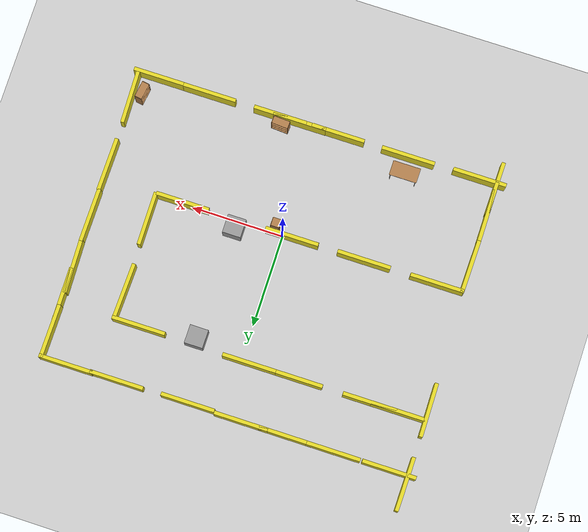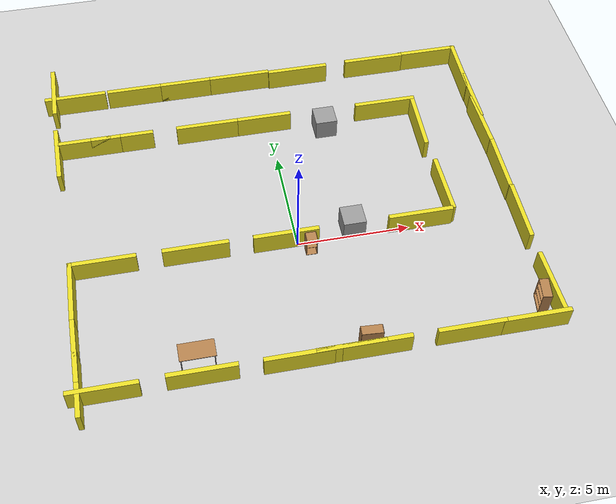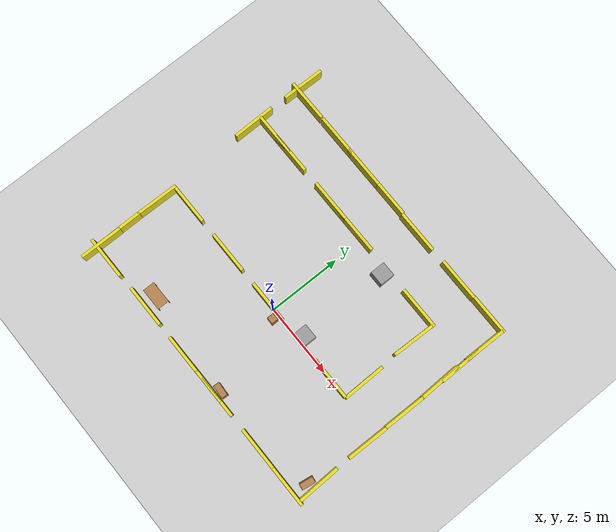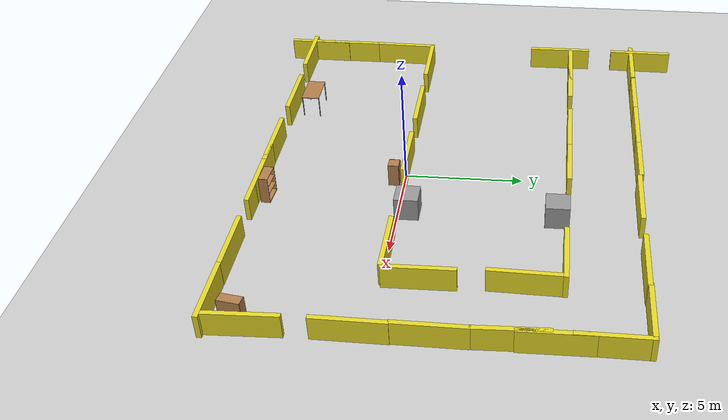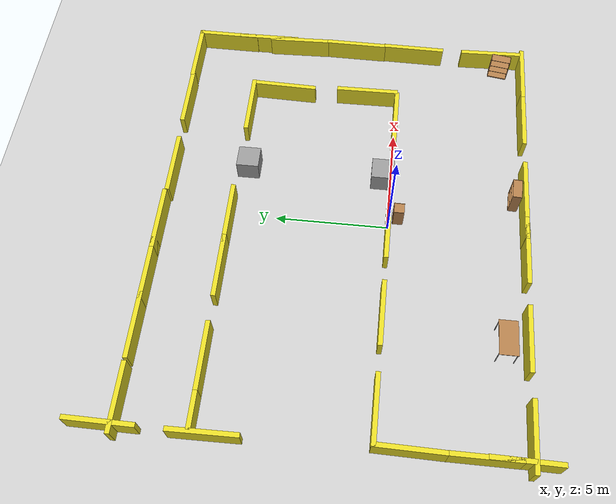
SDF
<sdf version="1.4">
 <world name="default">
  <light name="sun" type="directional">
   <pose>0 0 10 0 -0 0</pose>
   <diffuse>0.8 0.8 0.8 1</diffuse>
   <specular>0.2 0.2 0.2 1</specular>
   <attenuation>
    <range>1000</range>
    <constant>0.9</constant>
    <linear>0.01</linear>
    <quadratic>0.001</quadratic>
   </attenuation>
   <direction>-0.5 0.1 -0.9</direction>
  </light>
  <model name="ground_plane">
   <static>1</static>
   <link name="link">
    <collision name="collision">
     <geometry><plane><normal>0 0 1</normal><size>100 100</size></plane></geometry>
     <surface><friction><ode><mu>100</mu><mu2>50</mu2></ode></friction></surface>
    </collision>
    <visual name="visual">
     <cast_shadows>0</cast_shadows>
     <geometry><plane><normal>0 0 1</normal><size>100 100</size></plane></geometry>
     <material>
      <script><uri>file://media/materials/scripts/gazebo.material</uri><name>Gazebo/Grey</name></script>
     </material>
    </visual>
    <velocity_decay><linear>0</linear><angular>0</angular></velocity_decay>
   </link>
  </model>
  <physics type="ode">
   <max_step_size>0.001</max_step_size>
   <real_time_factor>1</real_time_factor>
   <real_time_update_rate>1000</real_time_update_rate>
   <gravity>0 0 -9.8</gravity>
  </physics>
  <scene><ambient>0.4 0.4 0.4 1</ambient><background>0.7 0.7 0.7 1</background><shadows>1</shadows></scene>
  <model name="grasp_wall">
   <link name="link">
    <inertial>
     <pose>0 0 0.6 0 -0 0</pose>
     <mass>100</mass>
     <inertia><ixx>1</ixx><ixy>0</ixy><ixz>0</ixz><iyy>1</iyy><iyz>0</iyz><izz>1</izz></inertia>
    </inertial>
    <collision name="collision"><geometry><box><size>2.9 0.2 2</size></box></geometry></collision>
    <visual name="visual">
     <geometry><box><size>2.9 0.2 2</size></box></geometry>
     <material>
      <script><uri>file://media/materials/scripts/gazebo.material</uri><name>Gazebo/Yellow</name></script>
     </material>
    </visual>
    <velocity_decay><linear>0</linear><angular>0</angular></velocity_decay>
   </link>
   <static>1</static>
   <pose>-8.91216 -6.05508 0 0 -0 0</pose>
  </model>
  <model name="grasp_wall_0">
   <link name="link">
    <inertial>
     <pose>0 0 0.6 0 -0 0</pose>
     <mass>100</mass>
     <inertia><ixx>1</ixx><ixy>0</ixy><ixz>0</ixz><iyy>1</iyy><iyz>0</iyz><izz>1</izz></inertia>
    </inertial>
    <collision name="collision"><geometry><box><size>2.9 0.2 2</size></box></geometry></collision>
    <visual name="visual">
     <geometry><box><size>2.9 0.2 2</size></box></geometry>
     <material>
      <script><uri>file://media/materials/scripts/gazebo.material</uri><name>Gazebo/Yellow</name></script>
     </material>
    </visual>
    <velocity_decay><linear>0</linear><angular>0</angular></velocity_decay>
   </link>
   <static>1</static>
   <pose>-5 -6 0 0 -0 0</pose>
  </model>
  <model name="grasp_wall_1">
   <link name="link">
    <inertial>
     <pose>0 0 0.6 0 -0 0</pose>
     <mass>100</mass>
     <inertia><ixx>1</ixx><ixy>0</ixy><ixz>0</ixz><iyy>1</iyy><iyz>0</iyz><izz>1</izz></inertia>
    </inertial>
    <collision name="collision"><geometry><box><size>2.9 0.2 2</size></box></geometry></collision>
    <visual name="visual">
     <geometry><box><size>2.9 0.2 2</size></box></geometry>
     <material>
      <script><uri>file://media/materials/scripts/gazebo.material</uri><name>Gazebo/Yellow</name></script>
     </material>
    </visual>
    <velocity_decay><linear>0</linear><angular>0</angular></velocity_decay>
   </link>
   <static>1</static>
   <pose>-1.12326 -6.01232 0 0 -0 0</pose>
  </model>
  <model name="grasp_wall_2">
   <link name="link">
    <inertial>
     <pose>0 0 0.6 0 -0 0</pose>
     <mass>100</mass>
     <inertia><ixx>1</ixx><ixy>0</ixy><ixz>0</ixz><iyy>1</iyy><iyz>0</iyz><izz>1</izz></inertia>
    </inertial>
    <collision name="collision"><geometry><box><size>2.9 0.2 2</size></box></geometry></collision>
    <visual name="visual">
     <geometry><box><size>2.9 0.2 2</size></box></geometry>
     <material>
      <script><uri>file://media/materials/scripts/gazebo.material</uri><name>Gazebo/Yellow</name></script>
     </material>
    </visual>
    <velocity_decay><linear>0</linear><angular>0</angular></velocity_decay>
   </link>
   <static>1</static>
   <pose>-8.45312 0 0 0 -0 0</pose>
  </model>
  <model name="grasp_wall_3">
   <link name="link">
    <inertial>
     <pose>0 0 0.6 0 -0 0</pose>
     <mass>100</mass>
     <inertia><ixx>1</ixx><ixy>0</ixy><ixz>0</ixz><iyy>1</iyy><iyz>0</iyz><izz>1</izz></inertia>
    </inertial>
    <collision name="collision"><geometry><box><size>2.9 0.2 2</size></box></geometry></collision>
    <visual name="visual">
     <geometry><box><size>2.9 0.2 2</size></box></geometry>
     <material>
      <script><uri>file://media/materials/scripts/gazebo.material</uri><name>Gazebo/Yellow</name></script>
     </material>
    </visual>
    <velocity_decay><linear>0</linear><angular>0</angular></velocity_decay>
   </link>
   <static>1</static>
   <pose>-4.46715 0 0 0 -0 0</pose>
  </model>
  <model name="grasp_wall_4">
   <link name="link">
    <inertial>
     <pose>0 0 0.6 0 -0 0</pose>
     <mass>100</mass>
     <inertia><ixx>1</ixx><ixy>0</ixy><ixz>0</ixz><iyy>1</iyy><iyz>0</iyz><izz>1</izz></inertia>
    </inertial>
    <collision name="collision"><geometry><box><size>2.9 0.2 2</size></box></geometry></collision>
    <visual name="visual">
     <geometry><box><size>2.9 0.2 2</size></box></geometry>
     <material>
      <script><uri>file://media/materials/scripts/gazebo.material</uri><name>Gazebo/Yellow</name></script>
     </material>
    </visual>
    <velocity_decay><linear>0</linear><angular>0</angular></velocity_decay>
   </link>
   <static>1</static>
   <pose>-0.517539 0 0 0 -0 0</pose>
  </model>
  <model name="unit_box_1">
   <pose>2.51924 0.408451 0.5 0 -0 0</pose>
   <link name="link">
    <inertial>
     <mass>1</mass>
     <inertia><ixx>1</ixx><ixy>0</ixy><ixz>0</ixz><iyy>1</iyy><iyz>0</iyz><izz>1</izz></inertia>
    </inertial>
    <collision name="collision"><geometry><box><size>1 1 1</size></box></geometry></collision>
    <visual name="visual">
     <geometry><box><size>1 1 1</size></box></geometry>
     <material>
      <script><uri>file://media/materials/scripts/gazebo.material</uri><name>Gazebo/Grey</name></script>
     </material>
    </visual>
    <velocity_decay><linear>0</linear><angular>0</angular></velocity_decay>
   </link>
   <static>1</static>
  </model>
  <model name="grasp_wall_5">
   <link name="link">
    <inertial>
     <pose>0 0 0.6 0 -0 0</pose>
     <mass>100</mass>
     <inertia><ixx>1</ixx><ixy>0</ixy><ixz>0</ixz><iyy>1</iyy><iyz>0</iyz><izz>1</izz></inertia>
    </inertial>
    <collision name="collision"><geometry><box><size>2.9 0.2 2</size></box></geometry></collision>
    <visual name="visual">
     <geometry><box><size>2.9 0.2 2</size></box></geometry>
     <material>
      <script><uri>file://media/materials/scripts/gazebo.material</uri><name>Gazebo/Yellow</name></script>
     </material>
    </visual>
    <velocity_decay><linear>0</linear><angular>0</angular></velocity_decay>
   </link>
   <static>1</static>
   <pose>2.07318 -6.003 0 0 -0 0</pose>
  </model>
  <model name="grasp_wall_6">
   <link name="link">
    <inertial>
     <pose>0 0 0.6 0 -0 0</pose>
     <mass>100</mass>
     <inertia><ixx>1</ixx><ixy>0</ixy><ixz>0</ixz><iyy>1</iyy><iyz>0</iyz><izz>1</izz></inertia>
    </inertial>
    <collision name="collision"><geometry><box><size>2.9 0.2 2</size></box></geometry></collision>
    <visual name="visual">
     <geometry><box><size>2.9 0.2 2</size></box></geometry>
     <material>
      <script><uri>file://media/materials/scripts/gazebo.material</uri><name>Gazebo/Yellow</name></script>
     </material>
    </visual>
    <velocity_decay><linear>0</linear><angular>0</angular></velocity_decay>
   </link>
   <static>1</static>
   <pose>5.50091 0 0 0 -0 0</pose>
  </model>
  <model name="grasp_wall_7">
   <link name="link">
    <inertial>
     <pose>0 0 0.6 0 -0 0</pose>
     <mass>100</mass>
     <inertia><ixx>1</ixx><ixy>0</ixy><ixz>0</ixz><iyy>1</iyy><iyz>0</iyz><izz>1</izz></inertia>
    </inertial>
    <collision name="collision"><geometry><box><size>2.9 0.2 2</size></box></geometry></collision>
    <visual name="visual">
     <geometry><box><size>2.9 0.2 2</size></box></geometry>
     <material>
      <script><uri>file://media/materials/scripts/gazebo.material</uri><name>Gazebo/Yellow</name></script>
     </material>
    </visual>
    <velocity_decay><linear>0</linear><angular>0</angular></velocity_decay>
   </link>
   <static>1</static>
   <pose>6 -6 0 0 -0 0</pose>
  </model>
  <model name="grasp_wall_8">
   <link name="link">
    <inertial>
     <pose>0 0 0.6 0 -0 0</pose>
     <mass>100</mass>
     <inertia><ixx>1</ixx><ixy>0</ixy><ixz>0</ixz><iyy>1</iyy><iyz>0</iyz><izz>1</izz></inertia>
    </inertial>
    <collision name="collision"><geometry><box><size>2.9 0.2 2</size></box></geometry></collision>
    <visual name="visual">
     <geometry><box><size>2.9 0.2 2</size></box></geometry>
     <material>
      <script><uri>file://media/materials/scripts/gazebo.material</uri><name>Gazebo/Yellow</name></script>
     </material>
    </visual>
    <velocity_decay><linear>0</linear><angular>0</angular></velocity_decay>
   </link>
   <static>1</static>
   <pose>8.75765 -6.00636 0 0 -0 0</pose>
  </model>
  <model name="grasp_wall_9">
   <link name="link">
    <inertial>
     <pose>0 0 0.6 0 -0 0</pose>
     <mass>100</mass>
     <inertia><ixx>1</ixx><ixy>0</ixy><ixz>0</ixz><iyy>1</iyy><iyz>0</iyz><izz>1</izz></inertia>
    </inertial>
    <collision name="collision"><geometry><box><size>2.9 0.2 2</size></box></geometry></collision>
    <visual name="visual">
     <geometry><box><size>2.9 0.2 2</size></box></geometry>
     <material>
      <script><uri>file://media/materials/scripts/gazebo.material</uri><name>Gazebo/Yellow</name></script>
     </material>
    </visual>
    <velocity_decay><linear>0</linear><angular>0</angular></velocity_decay>
   </link>
   <static>1</static>
   <pose>6.96769 1.43293 0 0 0 -1.56</pose>
  </model>
  <model name="grasp_wall_10">
   <link name="link">
    <inertial>
     <pose>0 0 0.6 0 -0 0</pose>
     <mass>100</mass>
     <inertia><ixx>1</ixx><ixy>0</ixy><ixz>0</ixz><iyy>1</iyy><iyz>0</iyz><izz>1</izz></inertia>
    </inertial>
    <collision name="collision"><geometry><box><size>2.9 0.2 2</size></box></geometry></collision>
    <visual name="visual">
     <geometry><box><size>2.9 0.2 2</size></box></geometry>
     <material>
      <script><uri>file://media/materials/scripts/gazebo.material</uri><name>Gazebo/Yellow</name></script>
     </material>
    </visual>
    <velocity_decay><linear>0</linear><angular>0</angular></velocity_decay>
   </link>
   <static>1</static>
   <pose>9.91108 -4.48626 0 0 -0 1.6</pose>
  </model>
  <model name="grasp_wall_11">
   <link name="link">
    <inertial>
     <pose>0 0 0.6 0 -0 0</pose>
     <mass>100</mass>
     <inertia><ixx>1</ixx><ixy>0</ixy><ixz>0</ixz><iyy>1</iyy><iyz>0</iyz><izz>1</izz></inertia>
    </inertial>
    <collision name="collision"><geometry><box><size>2.9 0.2 2</size></box></geometry></collision>
    <visual name="visual">
     <geometry><box><size>2.9 0.2 2</size></box></geometry>
     <material>
      <script><uri>file://media/materials/scripts/gazebo.material</uri><name>Gazebo/Yellow</name></script>
     </material>
    </visual>
    <velocity_decay><linear>0</linear><angular>0</angular></velocity_decay>
   </link>
   <static>1</static>
   <pose>9.87033 -0.668764 0 0 -0 1.55681</pose>
  </model>
  <model name="table">
   <static>1</static>
   <link name="link">
    <collision name="surface">
     <pose>0 0 1 0 -0 0</pose>
     <geometry><box><size>1.5 0.8 0.03</size></box></geometry>
    </collision>
    <visual name="visual1">
     <pose>0 0 1 0 -0 0</pose>
     <geometry><box><size>1.5 0.8 0.03</size></box></geometry>
     <material>
      <script><uri>file://media/materials/scripts/gazebo.material</uri><name>Gazebo/Wood</name></script>
     </material>
    </visual>
    <collision name="front_left_leg">
     <pose>0.68 0.38 0.5 0 -0 0</pose>
     <geometry><cylinder><radius>0.02</radius><length>1</length></cylinder></geometry>
    </collision>
    <visual name="front_left_leg">
     <pose>0.68 0.38 0.5 0 -0 0</pose>
     <geometry><cylinder><radius>0.02</radius><length>1</length></cylinder></geometry>
     <material>
      <script><uri>file://media/materials/scripts/gazebo.material</uri><name>Gazebo/Grey</name></script>
     </material>
    </visual>
    <collision name="front_right_leg">
     <pose>0.68 -0.38 0.5 0 -0 0</pose>
     <geometry><cylinder><radius>0.02</radius><length>1</length></cylinder></geometry>
    </collision>
    <visual name="front_right_leg">
     <pose>0.68 -0.38 0.5 0 -0 0</pose>
     <geometry><cylinder><radius>0.02</radius><length>1</length></cylinder></geometry>
     <material>
      <script><uri>file://media/materials/scripts/gazebo.material</uri><name>Gazebo/Grey</name></script>
     </material>
    </visual>
    <collision name="back_right_leg">
     <pose>-0.68 -0.38 0.5 0 -0 0</pose>
     <geometry><cylinder><radius>0.02</radius><length>1</length></cylinder></geometry>
    </collision>
    <visual name="back_right_leg">
     <pose>-0.68 -0.38 0.5 0 -0 0</pose>
     <geometry><cylinder><radius>0.02</radius><length>1</length></cylinder></geometry>
     <material>
      <script><uri>file://media/materials/scripts/gazebo.material</uri><name>Gazebo/Grey</name></script>
     </material>
    </visual>
    <collision name="back_left_leg">
     <pose>-0.68 0.38 0.5 0 -0 0</pose>
     <geometry><cylinder><radius>0.02</radius><length>1</length></cylinder></geometry>
    </collision>
    <visual name="back_left_leg">
     <pose>-0.68 0.38 0.5 0 -0 0</pose>
     <geometry><cylinder><radius>0.02</radius><length>1</length></cylinder></geometry>
     <material>
      <script><uri>file://media/materials/scripts/gazebo.material</uri><name>Gazebo/Grey</name></script>
     </material>
    </visual>
    <velocity_decay><linear>0</linear><angular>0</angular></velocity_decay>
   </link>
   <pose>-5.08678 -5.10259 0 0 -0 0</pose>
  </model>
  <model name="bookshelf">
   <static>1</static>
   <link name="link">
    <inertial><mass>1</mass></inertial>
    <collision name="back">
     <pose>0 0.005 0.6 0 -0 0</pose>
     <geometry><box><size>0.9 0.01 1.2</size></box></geometry>
    </collision>
    <visual name="visual1">
     <pose>0 0.005 0.6 0 -0 0</pose>
     <geometry><box><size>0.9 0.01 1.2</size></box></geometry>
     <material>
      <script><uri>file://media/materials/scripts/gazebo.material</uri><name>Gazebo/Wood</name></script>
     </material>
    </visual>
    <collision name="left_side">
     <pose>0.45 -0.195 0.6 0 -0 0</pose>
     <geometry><box><size>0.02 0.4 1.2</size></box></geometry>
    </collision>
    <visual name="visual2">
     <pose>0.45 -0.195 0.6 0 -0 0</pose>
     <geometry><box><size>0.02 0.4 1.2</size></box></geometry>
     <material>
      <script><uri>file://media/materials/scripts/gazebo.material</uri><name>Gazebo/Wood</name></script>
     </material>
    </visual>
    <collision name="right_side">
     <pose>-0.45 -0.195 0.6 0 -0 0</pose>
     <geometry><box><size>0.02 0.4 1.2</size></box></geometry>
    </collision>
    <visual name="visual3">
     <pose>-0.45 -0.195 0.6 0 -0 0</pose>
     <geometry><box><size>0.02 0.4 1.2</size></box></geometry>
     <material>
      <script><uri>file://media/materials/scripts/gazebo.material</uri><name>Gazebo/Wood</name></script>
     </material>
    </visual>
    <collision name="bottom">
     <pose>0 -0.195 0.03 0 -0 0</pose>
     <geometry><box><size>0.88 0.4 0.06</size></box></geometry>
    </collision>
    <visual name="visual4">
     <pose>0 -0.195 0.03 0 -0 0</pose>
     <geometry><box><size>0.88 0.4 0.06</size></box></geometry>
     <material>
      <script><uri>file://media/materials/scripts/gazebo.material</uri><name>Gazebo/Wood</name></script>
     </material>
    </visual>
    <collision name="top">
     <pose>0 -0.195 1.19 0 -0 0</pose>
     <geometry><box><size>0.88 0.4 0.02</size></box></geometry>
    </collision>
    <visual name="visual5">
     <pose>0 -0.195 1.19 0 -0 0</pose>
     <geometry><box><size>0.88 0.4 0.02</size></box></geometry>
     <material>
      <script><uri>file://media/materials/scripts/gazebo.material</uri><name>Gazebo/Wood</name></script>
     </material>
    </visual>
    <collision name="low_shelf">
     <pose>0 -0.195 0.43 0 -0 0</pose>
     <geometry><box><size>0.88 0.4 0.02</size></box></geometry>
    </collision>
    <visual name="visual6">
     <pose>0 -0.195 0.43 0 -0 0</pose>
     <geometry><box><size>0.88 0.4 0.02</size></box></geometry>
     <material>
      <script><uri>file://media/materials/scripts/gazebo.material</uri><name>Gazebo/Wood</name></script>
     </material>
    </visual>
    <collision name="high_shelf">
     <pose>0 -0.195 0.8 0 -0 0</pose>
     <geometry><box><size>0.88 0.4 0.02</size></box></geometry>
    </collision>
    <visual name="visual7">
     <pose>0 -0.195 0.8 0 -0 0</pose>
     <geometry><box><size>0.88 0.4 0.02</size></box></geometry>
     <material>
      <script><uri>file://media/materials/scripts/gazebo.material</uri><name>Gazebo/Wood</name></script>
     </material>
    </visual>
    <velocity_decay><linear>0</linear><angular>0</angular></velocity_decay>
   </link>
   <pose>1.89849 -5.77517 0 0 -0 3.08</pose>
  </model>
  <model name="bookshelf_0">
   <static>1</static>
   <link name="link">
    <inertial><mass>1</mass></inertial>
    <collision name="back">
     <pose>0 0.005 0.6 0 -0 0</pose>
     <geometry><box><size>0.9 0.01 1.2</size></box></geometry>
    </collision>
    <visual name="visual1">
     <pose>0 0.005 0.6 0 -0 0</pose>
     <geometry><box><size>0.9 0.01 1.2</size></box></geometry>
     <material>
      <script><uri>file://media/materials/scripts/gazebo.material</uri><name>Gazebo/Wood</name></script>
     </material>
    </visual>
    <collision name="left_side">
     <pose>0.45 -0.195 0.6 0 -0 0</pose>
     <geometry><box><size>0.02 0.4 1.2</size></box></geometry>
    </collision>
    <visual name="visual2">
     <pose>0.45 -0.195 0.6 0 -0 0</pose>
     <geometry><box><size>0.02 0.4 1.2</size></box></geometry>
     <material>
      <script><uri>file://media/materials/scripts/gazebo.material</uri><name>Gazebo/Wood</name></script>
     </material>
    </visual>
    <collision name="right_side">
     <pose>-0.45 -0.195 0.6 0 -0 0</pose>
     <geometry><box><size>0.02 0.4 1.2</size></box></geometry>
    </collision>
    <visual name="visual3">
     <pose>-0.45 -0.195 0.6 0 -0 0</pose>
     <geometry><box><size>0.02 0.4 1.2</size></box></geometry>
     <material>
      <script><uri>file://media/materials/scripts/gazebo.material</uri><name>Gazebo/Wood</name></script>
     </material>
    </visual>
    <collision name="bottom">
     <pose>0 -0.195 0.03 0 -0 0</pose>
     <geometry><box><size>0.88 0.4 0.06</size></box></geometry>
    </collision>
    <visual name="visual4">
     <pose>0 -0.195 0.03 0 -0 0</pose>
     <geometry><box><size>0.88 0.4 0.06</size></box></geometry>
     <material>
      <script><uri>file://media/materials/scripts/gazebo.material</uri><name>Gazebo/Wood</name></script>
     </material>
    </visual>
    <collision name="top">
     <pose>0 -0.195 1.19 0 -0 0</pose>
     <geometry><box><size>0.88 0.4 0.02</size></box></geometry>
    </collision>
    <visual name="visual5">
     <pose>0 -0.195 1.19 0 -0 0</pose>
     <geometry><box><size>0.88 0.4 0.02</size></box></geometry>
     <material>
      <script><uri>file://media/materials/scripts/gazebo.material</uri><name>Gazebo/Wood</name></script>
     </material>
    </visual>
    <collision name="low_shelf">
     <pose>0 -0.195 0.43 0 -0 0</pose>
     <geometry><box><size>0.88 0.4 0.02</size></box></geometry>
    </collision>
    <visual name="visual6">
     <pose>0 -0.195 0.43 0 -0 0</pose>
     <geometry><box><size>0.88 0.4 0.02</size></box></geometry>
     <material>
      <script><uri>file://media/materials/scripts/gazebo.material</uri><name>Gazebo/Wood</name></script>
     </material>
    </visual>
    <collision name="high_shelf">
     <pose>0 -0.195 0.8 0 -0 0</pose>
     <geometry><box><size>0.88 0.4 0.02</size></box></geometry>
    </collision>
    <visual name="visual7">
     <pose>0 -0.195 0.8 0 -0 0</pose>
     <geometry><box><size>0.88 0.4 0.02</size></box></geometry>
     <material>
      <script><uri>file://media/materials/scripts/gazebo.material</uri><name>Gazebo/Wood</name></script>
     </material>
    </visual>
    <velocity_decay><linear>0</linear><angular>0</angular></velocity_decay>
   </link>
   <pose>9.59644 -4.98782 0 0 0 -1.72318</pose>
  </model>
  <model name="grasp_wall_12">
   <link name="link">
    <inertial>
     <pose>0 0 0.6 0 -0 0</pose>
     <mass>100</mass>
     <inertia><ixx>1</ixx><ixy>0</ixy><ixz>0</ixz><iyy>1</iyy><iyz>0</iyz><izz>1</izz></inertia>
    </inertial>
    <collision name="collision"><geometry><box><size>2.9 0.2 2</size></box></geometry></collision>
    <visual name="visual">
     <geometry><box><size>2.9 0.2 2</size></box></geometry>
     <material>
      <script><uri>file://media/materials/scripts/gazebo.material</uri><name>Gazebo/Yellow</name></script>
     </material>
    </visual>
    <velocity_decay><linear>0</linear><angular>0</angular></velocity_decay>
   </link>
   <static>1</static>
   <pose>8.538 9.99055 0 0 -0 0</pose>
  </model>
  <model name="grasp_wall_13">
   <link name="link">
    <inertial>
     <pose>0 0 0.6 0 -0 0</pose>
     <mass>100</mass>
     <inertia><ixx>1</ixx><ixy>0</ixy><ixz>0</ixz><iyy>1</iyy><iyz>0</iyz><izz>1</izz></inertia>
    </inertial>
    <collision name="collision"><geometry><box><size>2.9 0.2 2</size></box></geometry></collision>
    <visual name="visual">
     <geometry><box><size>2.9 0.2 2</size></box></geometry>
     <material>
      <script><uri>file://media/materials/scripts/gazebo.material</uri><name>Gazebo/Yellow</name></script>
     </material>
    </visual>
    <velocity_decay><linear>0</linear><angular>0</angular></velocity_decay>
   </link>
   <static>1</static>
   <pose>5.77055 9.9622 0 0 -0 0</pose>
  </model>
  <model name="grasp_wall_14">
   <link name="link">
    <inertial>
     <pose>0 0 0.6 0 -0 0</pose>
     <mass>100</mass>
     <inertia><ixx>1</ixx><ixy>0</ixy><ixz>0</ixz><iyy>1</iyy><iyz>0</iyz><izz>1</izz></inertia>
    </inertial>
    <collision name="collision"><geometry><box><size>2.9 0.2 2</size></box></geometry></collision>
    <visual name="visual">
     <geometry><box><size>2.9 0.2 2</size></box></geometry>
     <material>
      <script><uri>file://media/materials/scripts/gazebo.material</uri><name>Gazebo/Yellow</name></script>
     </material>
    </visual>
    <velocity_decay><linear>0</linear><angular>0</angular></velocity_decay>
   </link>
   <static>1</static>
   <pose>9.87542 2.18659 0 0 -0 1.56</pose>
  </model>
  <model name="grasp_wall_15">
   <link name="link">
    <inertial>
     <pose>0 0 0.6 0 -0 0</pose>
     <mass>100</mass>
     <inertia><ixx>1</ixx><ixy>0</ixy><ixz>0</ixz><iyy>1</iyy><iyz>0</iyz><izz>1</izz></inertia>
    </inertial>
    <collision name="collision"><geometry><box><size>2.9 0.2 2</size></box></geometry></collision>
    <visual name="visual">
     <geometry><box><size>2.9 0.2 2</size></box></geometry>
     <material>
      <script><uri>file://media/materials/scripts/gazebo.material</uri><name>Gazebo/Yellow</name></script>
     </material>
    </visual>
    <velocity_decay><linear>0</linear><angular>0</angular></velocity_decay>
   </link>
   <static>1</static>
   <pose>6.89285 5.38285 0 0 0 -1.6</pose>
  </model>
  <model name="grasp_wall_16">
   <link name="link">
    <inertial>
     <pose>0 0 0.6 0 -0 0</pose>
     <mass>100</mass>
     <inertia><ixx>1</ixx><ixy>0</ixy><ixz>0</ixz><iyy>1</iyy><iyz>0</iyz><izz>1</izz></inertia>
    </inertial>
    <collision name="collision"><geometry><box><size>2.9 0.2 2</size></box></geometry></collision>
    <visual name="visual">
     <geometry><box><size>2.9 0.2 2</size></box></geometry>
     <material>
      <script><uri>file://media/materials/scripts/gazebo.material</uri><name>Gazebo/Yellow</name></script>
     </material>
    </visual>
    <velocity_decay><linear>0</linear><angular>0</angular></velocity_decay>
   </link>
   <static>1</static>
   <pose>5.59816 6.92153 0 0 -0 0</pose>
  </model>
  <model name="grasp_wall_17">
   <link name="link">
    <inertial>
     <pose>0 0 0.6 0 -0 0</pose>
     <mass>100</mass>
     <inertia><ixx>1</ixx><ixy>0</ixy><ixz>0</ixz><iyy>1</iyy><iyz>0</iyz><izz>1</izz></inertia>
    </inertial>
    <collision name="collision"><geometry><box><size>2.9 0.2 2</size></box></geometry></collision>
    <visual name="visual">
     <geometry><box><size>2.9 0.2 2</size></box></geometry>
     <material>
      <script><uri>file://media/materials/scripts/gazebo.material</uri><name>Gazebo/Yellow</name></script>
     </material>
    </visual>
    <velocity_decay><linear>0</linear><angular>0</angular></velocity_decay>
   </link>
   <static>1</static>
   <pose>9.8398 5.02557 0 0 -0 1.6</pose>
  </model>
  <model name="grasp_wall_18">
   <link name="link">
    <inertial>
     <pose>0 0 0.6 0 -0 0</pose>
     <mass>100</mass>
     <inertia><ixx>1</ixx><ixy>0</ixy><ixz>0</ixz><iyy>1</iyy><iyz>0</iyz><izz>1</izz></inertia>
    </inertial>
    <collision name="collision"><geometry><box><size>2.9 0.2 2</size></box></geometry></collision>
    <visual name="visual">
     <geometry><box><size>2.9 0.2 2</size></box></geometry>
     <material>
      <script><uri>file://media/materials/scripts/gazebo.material</uri><name>Gazebo/Yellow</name></script>
     </material>
    </visual>
    <velocity_decay><linear>0</linear><angular>0</angular></velocity_decay>
   </link>
   <static>1</static>
   <pose>9.874 6.60028 0 0 0 -1.56319</pose>
  </model>
  <model name="grasp_wall_19">
   <link name="link">
    <inertial>
     <pose>0 0 0.6 0 -0 0</pose>
     <mass>100</mass>
     <inertia><ixx>1</ixx><ixy>0</ixy><ixz>0</ixz><iyy>1</iyy><iyz>0</iyz><izz>1</izz></inertia>
    </inertial>
    <collision name="collision"><geometry><box><size>2.9 0.2 2</size></box></geometry></collision>
    <visual name="visual">
     <geometry><box><size>2.9 0.2 2</size></box></geometry>
     <material>
      <script><uri>file://media/materials/scripts/gazebo.material</uri><name>Gazebo/Yellow</name></script>
     </material>
    </visual>
    <velocity_decay><linear>0</linear><angular>0</angular></velocity_decay>
   </link>
   <static>1</static>
   <pose>9.86316 8.62017 0 0 -0 1.56</pose>
  </model>
  <model name="unit_box_1_0">
   <pose>2.56494 6.54779 0.5 0 -0 0</pose>
   <link name="link">
    <inertial>
     <mass>1</mass>
     <inertia><ixx>1</ixx><ixy>0</ixy><ixz>0</ixz><iyy>1</iyy><iyz>0</iyz><izz>1</izz></inertia>
    </inertial>
    <collision name="collision"><geometry><box><size>1 1 1</size></box></geometry></collision>
    <visual name="visual">
     <geometry><box><size>1 1 1</size></box></geometry>
     <material>
      <script><uri>file://media/materials/scripts/gazebo.material</uri><name>Gazebo/Grey</name></script>
     </material>
    </visual>
    <velocity_decay><linear>0</linear><angular>0</angular></velocity_decay>
   </link>
   <static>1</static>
  </model>
  <model name="grasp_wall_20">
   <link name="link">
    <inertial>
     <pose>0 0 0.6 0 -0 0</pose>
     <mass>100</mass>
     <inertia><ixx>1</ixx><ixy>0</ixy><ixz>0</ixz><iyy>1</iyy><iyz>0</iyz><izz>1</izz></inertia>
    </inertial>
    <collision name="collision"><geometry><box><size>2.9 0.2 2</size></box></geometry></collision>
    <visual name="visual">
     <geometry><box><size>2.9 0.2 2</size></box></geometry>
     <material>
      <script><uri>file://media/materials/scripts/gazebo.material</uri><name>Gazebo/Yellow</name></script>
     </material>
    </visual>
    <velocity_decay><linear>0</linear><angular>0</angular></velocity_decay>
   </link>
   <static>1</static>
   <pose>1.90888 9.92219 0 0 -0 0</pose>
  </model>
  <model name="grasp_wall_21">
   <link name="link">
    <inertial>
     <pose>0 0 0.6 0 -0 0</pose>
     <mass>100</mass>
     <inertia><ixx>1</ixx><ixy>0</ixy><ixz>0</ixz><iyy>1</iyy><iyz>0</iyz><izz>1</izz></inertia>
    </inertial>
    <collision name="collision"><geometry><box><size>2.9 0.2 2</size></box></geometry></collision>
    <visual name="visual">
     <geometry><box><size>2.9 0.2 2</size></box></geometry>
     <material>
      <script><uri>file://media/materials/scripts/gazebo.material</uri><name>Gazebo/Yellow</name></script>
     </material>
    </visual>
    <velocity_decay><linear>0</linear><angular>0</angular></velocity_decay>
   </link>
   <static>1</static>
   <pose>-0.459983 7 0 0 -0 0</pose>
  </model>
  <model name="grasp_wall_22">
   <link name="link">
    <inertial>
     <pose>0 0 0.6 0 -0 0</pose>
     <mass>100</mass>
     <inertia><ixx>1</ixx><ixy>0</ixy><ixz>0</ixz><iyy>1</iyy><iyz>0</iyz><izz>1</izz></inertia>
    </inertial>
    <collision name="collision"><geometry><box><size>2.9 0.2 2</size></box></geometry></collision>
    <visual name="visual">
     <geometry><box><size>2.9 0.2 2</size></box></geometry>
     <material>
      <script><uri>file://media/materials/scripts/gazebo.material</uri><name>Gazebo/Yellow</name></script>
     </material>
    </visual>
    <velocity_decay><linear>0</linear><angular>0</angular></velocity_decay>
   </link>
   <static>1</static>
   <pose>-1 10 0 0 -0 0</pose>
  </model>
  <model name="grasp_wall_23">
   <link name="link">
    <inertial>
     <pose>0 0 0.6 0 -0 0</pose>
     <mass>100</mass>
     <inertia><ixx>1</ixx><ixy>0</ixy><ixz>0</ixz><iyy>1</iyy><iyz>0</iyz><izz>1</izz></inertia>
    </inertial>
    <collision name="collision"><geometry><box><size>2.9 0.2 2</size></box></geometry></collision>
    <visual name="visual">
     <geometry><box><size>2.9 0.2 2</size></box></geometry>
     <material>
      <script><uri>file://media/materials/scripts/gazebo.material</uri><name>Gazebo/Yellow</name></script>
     </material>
    </visual>
    <velocity_decay><linear>0</linear><angular>0</angular></velocity_decay>
   </link>
   <static>1</static>
   <pose>-3 7 0 0 -0 0</pose>
  </model>
  <model name="grasp_wall_24">
   <link name="link">
    <inertial>
     <pose>0 0 0.6 0 -0 0</pose>
     <mass>100</mass>
     <inertia><ixx>1</ixx><ixy>0</ixy><ixz>0</ixz><iyy>1</iyy><iyz>0</iyz><izz>1</izz></inertia>
    </inertial>
    <collision name="collision"><geometry><box><size>2.9 0.2 2</size></box></geometry></collision>
    <visual name="visual">
     <geometry><box><size>2.9 0.2 2</size></box></geometry>
     <material>
      <script><uri>file://media/materials/scripts/gazebo.material</uri><name>Gazebo/Yellow</name></script>
     </material>
    </visual>
    <velocity_decay><linear>0</linear><angular>0</angular></velocity_decay>
   </link>
   <static>1</static>
   <pose>-7 7 0 0 -0 0</pose>
  </model>
  <model name="grasp_wall_25">
   <link name="link">
    <inertial>
     <pose>0 0 0.6 0 -0 0</pose>
     <mass>100</mass>
     <inertia><ixx>1</ixx><ixy>0</ixy><ixz>0</ixz><iyy>1</iyy><iyz>0</iyz><izz>1</izz></inertia>
    </inertial>
    <collision name="collision"><geometry><box><size>2.9 0.2 2</size></box></geometry></collision>
    <visual name="visual">
     <geometry><box><size>2.9 0.2 2</size></box></geometry>
     <material>
      <script><uri>file://media/materials/scripts/gazebo.material</uri><name>Gazebo/Yellow</name></script>
     </material>
    </visual>
    <velocity_decay><linear>0</linear><angular>0</angular></velocity_decay>
   </link>
   <static>1</static>
   <pose>-8.53652 7 0 0 -0 0</pose>
  </model>
  <model name="grasp_wall_26">
   <link name="link">
    <inertial>
     <pose>0 0 0.6 0 -0 0</pose>
     <mass>100</mass>
     <inertia><ixx>1</ixx><ixy>0</ixy><ixz>0</ixz><iyy>1</iyy><iyz>0</iyz><izz>1</izz></inertia>
    </inertial>
    <collision name="collision"><geometry><box><size>2.9 0.2 2</size></box></geometry></collision>
    <visual name="visual">
     <geometry><box><size>2.9 0.2 2</size></box></geometry>
     <material>
      <script><uri>file://media/materials/scripts/gazebo.material</uri><name>Gazebo/Yellow</name></script>
     </material>
    </visual>
    <velocity_decay><linear>0</linear><angular>0</angular></velocity_decay>
   </link>
   <static>1</static>
   <pose>-9.87254 -4.19485 0 0 0 -1.56956</pose>
  </model>
  <model name="grasp_wall_27">
   <link name="link">
    <inertial>
     <pose>0 0 0.6 0 -0 0</pose>
     <mass>100</mass>
     <inertia><ixx>1</ixx><ixy>0</ixy><ixz>0</ixz><iyy>1</iyy><iyz>0</iyz><izz>1</izz></inertia>
    </inertial>
    <collision name="collision"><geometry><box><size>2.9 0.2 2</size></box></geometry></collision>
    <visual name="visual">
     <geometry><box><size>2.9 0.2 2</size></box></geometry>
     <material>
      <script><uri>file://media/materials/scripts/gazebo.material</uri><name>Gazebo/Yellow</name></script>
     </material>
    </visual>
    <velocity_decay><linear>0</linear><angular>0</angular></velocity_decay>
   </link>
   <static>1</static>
   <pose>-9.85237 -1.35792 0 0 -0 1.55363</pose>
  </model>
  <model name="grasp_wall_28">
   <link name="link">
    <inertial>
     <pose>0 0 0.6 0 -0 0</pose>
     <mass>100</mass>
     <inertia><ixx>1</ixx><ixy>0</ixy><ixz>0</ixz><iyy>1</iyy><iyz>0</iyz><izz>1</izz></inertia>
    </inertial>
    <collision name="collision"><geometry><box><size>2.9 0.2 2</size></box></geometry></collision>
    <visual name="visual">
     <geometry><box><size>2.9 0.2 2</size></box></geometry>
     <material>
      <script><uri>file://media/materials/scripts/gazebo.material</uri><name>Gazebo/Yellow</name></script>
     </material>
    </visual>
    <velocity_decay><linear>0</linear><angular>0</angular></velocity_decay>
   </link>
   <static>1</static>
   <pose>-9 10 0 0 -0 0</pose>
  </model>
  <model name="grasp_wall_29">
   <link name="link">
    <inertial>
     <pose>0 0 0.6 0 -0 0</pose>
     <mass>100</mass>
     <inertia><ixx>1</ixx><ixy>0</ixy><ixz>0</ixz><iyy>1</iyy><iyz>0</iyz><izz>1</izz></inertia>
    </inertial>
    <collision name="collision"><geometry><box><size>2.9 0.2 2</size></box></geometry></collision>
    <visual name="visual">
     <geometry><box><size>2.9 0.2 2</size></box></geometry>
     <material>
      <script><uri>file://media/materials/scripts/gazebo.material</uri><name>Gazebo/Yellow</name></script>
     </material>
    </visual>
    <velocity_decay><linear>0</linear><angular>0</angular></velocity_decay>
   </link>
   <static>1</static>
   <pose>-3.41962 10 0 0 -0 0</pose>
  </model>
  <model name="grasp_wall_30">
   <link name="link">
    <inertial>
     <pose>0 0 0.6 0 -0 0</pose>
     <mass>100</mass>
     <inertia><ixx>1</ixx><ixy>0</ixy><ixz>0</ixz><iyy>1</iyy><iyz>0</iyz><izz>1</izz></inertia>
    </inertial>
    <collision name="collision"><geometry><box><size>2.9 0.2 2</size></box></geometry></collision>
    <visual name="visual">
     <geometry><box><size>2.9 0.2 2</size></box></geometry>
     <material>
      <script><uri>file://media/materials/scripts/gazebo.material</uri><name>Gazebo/Yellow</name></script>
     </material>
    </visual>
    <velocity_decay><linear>0</linear><angular>0</angular></velocity_decay>
   </link>
   <static>1</static>
   <pose>-6 10 0 0 -0 0</pose>
  </model>
  <model name="grasp_wall_31">
   <link name="link">
    <inertial>
     <pose>0 0 0.6 0 -0 0</pose>
     <mass>100</mass>
     <inertia><ixx>1</ixx><ixy>0</ixy><ixz>0</ixz><iyy>1</iyy><iyz>0</iyz><izz>1</izz></inertia>
    </inertial>
    <collision name="collision"><geometry><box><size>2.9 0.2 2</size></box></geometry></collision>
    <visual name="visual">
     <geometry><box><size>2.9 0.2 2</size></box></geometry>
     <material>
      <script><uri>file://media/materials/scripts/gazebo.material</uri><name>Gazebo/Yellow</name></script>
     </material>
    </visual>
    <velocity_decay><linear>0</linear><angular>0</angular></velocity_decay>
   </link>
   <static>1</static>
   <pose>-9.86562 -5.72744 0 0 -0 1.56</pose>
  </model>
  <model name="grasp_wall_32">
   <link name="link">
    <inertial>
     <pose>0 0 0.6 0 -0 0</pose>
     <mass>100</mass>
     <inertia><ixx>1</ixx><ixy>0</ixy><ixz>0</ixz><iyy>1</iyy><iyz>0</iyz><izz>1</izz></inertia>
    </inertial>
    <collision name="collision"><geometry><box><size>2.9 0.2 2</size></box></geometry></collision>
    <visual name="visual">
     <geometry><box><size>2.9 0.2 2</size></box></geometry>
     <material>
      <script><uri>file://media/materials/scripts/gazebo.material</uri><name>Gazebo/Yellow</name></script>
     </material>
    </visual>
    <velocity_decay><linear>0</linear><angular>0</angular></velocity_decay>
   </link>
   <static>1</static>
   <pose>-10.0184 6.46235 0 0 0 -1.56</pose>
  </model>
  <model name="grasp_wall_33">
   <link name="link">
    <inertial>
     <pose>0 0 0.6 0 -0 0</pose>
     <mass>100</mass>
     <inertia><ixx>1</ixx><ixy>0</ixy><ixz>0</ixz><iyy>1</iyy><iyz>0</iyz><izz>1</izz></inertia>
    </inertial>
    <collision name="collision"><geometry><box><size>2.9 0.2 2</size></box></geometry></collision>
    <visual name="visual">
     <geometry><box><size>2.9 0.2 2</size></box></geometry>
     <material>
      <script><uri>file://media/materials/scripts/gazebo.material</uri><name>Gazebo/Yellow</name></script>
     </material>
    </visual>
    <velocity_decay><linear>0</linear><angular>0</angular></velocity_decay>
   </link>
   <static>1</static>
   <pose>-10.0039 10.4615 0 0 -0 1.56</pose>
  </model>
  <model name="grasp_wall_34">
   <link name="link">
    <inertial>
     <pose>0 0 0.6 0 -0 0</pose>
     <mass>100</mass>
     <inertia><ixx>1</ixx><ixy>0</ixy><ixz>0</ixz><iyy>1</iyy><iyz>0</iyz><izz>1</izz></inertia>
    </inertial>
    <collision name="collision"><geometry><box><size>2.9 0.2 2</size></box></geometry></collision>
    <visual name="visual">
     <geometry><box><size>2.9 0.2 2</size></box></geometry>
     <material>
      <script><uri>file://media/materials/scripts/gazebo.material</uri><name>Gazebo/Yellow</name></script>
     </material>
    </visual>
    <velocity_decay><linear>0</linear><angular>0</angular></velocity_decay>
   </link>
   <static>1</static>
   <pose>1 -6 0 0 -0 0</pose>
  </model>
  <model name="cabinet">
   <static>1</static>
   <link name="cabinet_bottom_plate">
    <inertial>
     <pose>0 0 -1 0 -0 0</pose>
     <inertia><ixx>2.05</ixx><ixy>0</ixy><ixz>0</ixz><iyy>2.05</iyy><iyz>0</iyz><izz>2.05</izz></inertia>
     <mass>25</mass>
    </inertial>
    <collision name="cabinet_bottom_plate_geom">
     <pose>0 0 0.01 0 -0 0</pose>
     <geometry><box><size>0.45 0.45 0.02</size></box></geometry>
    </collision>
    <visual name="cabinet_bottom_plate_geom_visual">
     <pose>0 0 0.01 0 -0 0</pose>
     <geometry><box><size>0.45 0.45 0.02</size></box></geometry>
     <material>
      <script><uri>file://media/materials/scripts/gazebo.material</uri><name>Gazebo/Wood</name></script>
     </material>
    </visual>
    <collision name="cabinet_bottom_plate_geom_cabinet_back_plate">
     <pose>0.235 0 0.51 0 -0 0</pose>
     <geometry><box><size>0.02 0.45 1.02</size></box></geometry>
    </collision>
    <visual name="cabinet_bottom_plate_geom_cabinet_back_plate_visual">
     <pose>0.235 0 0.51 0 -0 0</pose>
     <geometry><box><size>0.02 0.45 1.02</size></box></geometry>
     <material>
      <script><uri>file://media/materials/scripts/gazebo.material</uri><name>Gazebo/Wood</name></script>
     </material>
    </visual>
    <collision name="cabinet_bottom_plate_geom_cabinet_left_plate">
     <pose>0 0.235 0.51 0 -0 0</pose>
     <geometry><box><size>0.45 0.02 1.02</size></box></geometry>
    </collision>
    <visual name="cabinet_bottom_plate_geom_cabinet_left_plate_visual">
     <pose>0 0.235 0.51 0 -0 0</pose>
     <geometry><box><size>0.45 0.02 1.02</size></box></geometry>
     <material>
      <script><uri>file://media/materials/scripts/gazebo.material</uri><name>Gazebo/Wood</name></script>
     </material>
    </visual>
    <collision name="cabinet_bottom_plate_geom_cabinet_middle_plate">
     <pose>0 0 0.51 0 -0 0</pose>
     <geometry><box><size>0.45 0.45 0.02</size></box></geometry>
    </collision>
    <visual name="cabinet_bottom_plate_geom_cabinet_middle_plate_visual">
     <pose>0 0 0.51 0 -0 0</pose>
     <geometry><box><size>0.45 0.45 0.02</size></box></geometry>
     <material>
      <script><uri>file://media/materials/scripts/gazebo.material</uri><name>Gazebo/Wood</name></script>
     </material>
    </visual>
    <collision name="cabinet_bottom_plate_geom_cabinet_right_plate">
     <pose>0 -0.235 0.51 0 -0 0</pose>
     <geometry><box><size>0.45 0.02 1.02</size></box></geometry>
    </collision>
    <visual name="cabinet_bottom_plate_geom_cabinet_right_plate_visual">
     <pose>0 -0.235 0.51 0 -0 0</pose>
     <geometry><box><size>0.45 0.02 1.02</size></box></geometry>
     <material>
      <script><uri>file://media/materials/scripts/gazebo.material</uri><name>Gazebo/Wood</name></script>
     </material>
    </visual>
    <collision name="cabinet_bottom_plate_geom_cabinet_top_plate">
     <pose>0 0 1.01 0 -0 0</pose>
     <geometry><box><size>0.45 0.45 0.02</size></box></geometry>
    </collision>
    <visual name="cabinet_bottom_plate_geom_cabinet_top_plate_visual">
     <pose>0 0 1.01 0 -0 0</pose>
     <geometry><box><size>0.45 0.45 0.02</size></box></geometry>
     <material>
      <script><uri>file://media/materials/scripts/gazebo.material</uri><name>Gazebo/Wood</name></script>
     </material>
    </visual>
    <velocity_decay><linear>0</linear><angular>0</angular></velocity_decay>
   </link>
   <pose>0.492823 -0.437574 0 0 -0 1.56</pose>
  </model>
 </world>
</sdf>
